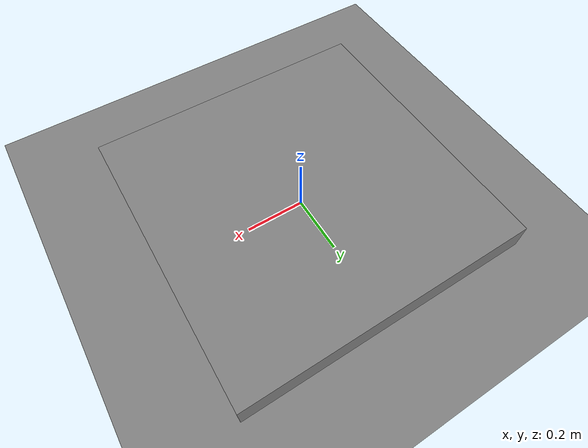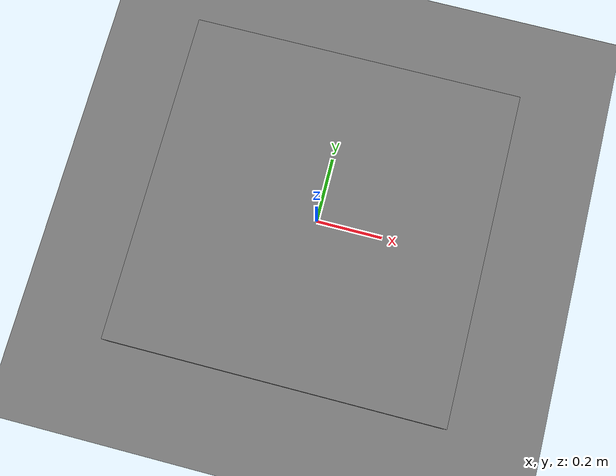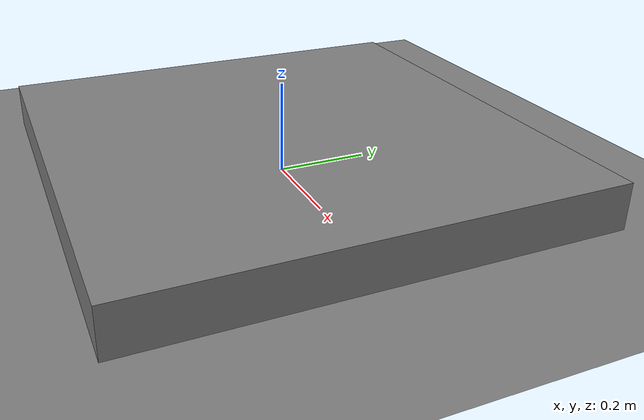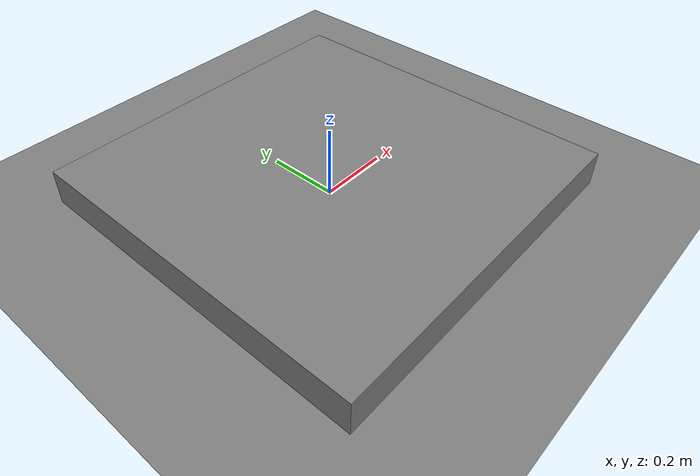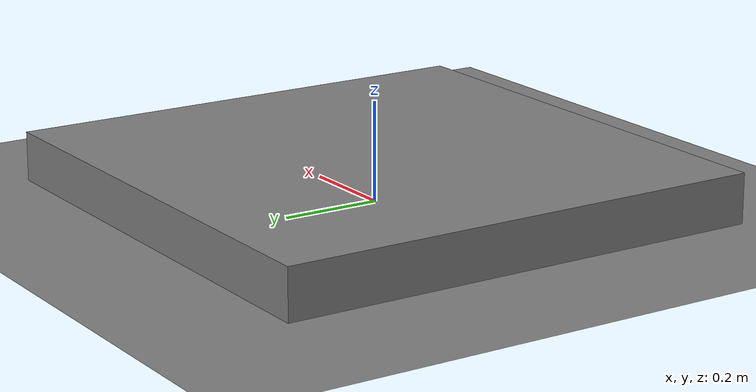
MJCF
<mujoco model="noslip_degenerate">
            <option gravity="0 0 -9.81" timestep="0.002" solver="PGS" cone="pyramidal"
                    iterations="100" noslip_iterations="50" noslip_tolerance="1e-12"/>
            <worldbody>
                <geom name="floor" type="plane" size="5 5 0.1"/>
                <body name="box" pos="0 0 0.05">
                    <joint type="free"/>
                    <geom name="flatbox" type="box" size="0.5 0.5 0.05" mass="1.0"
                          condim="3" friction="0.5 0.5 0.005 0.001 0.001"/>
                </body>
            </worldbody>
        </mujoco>
